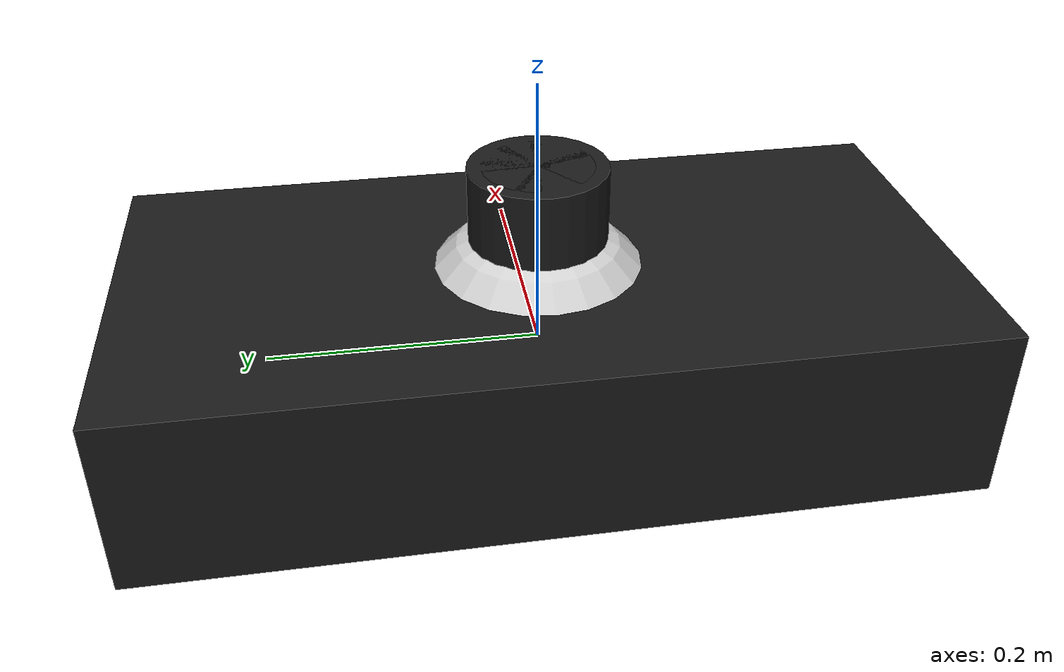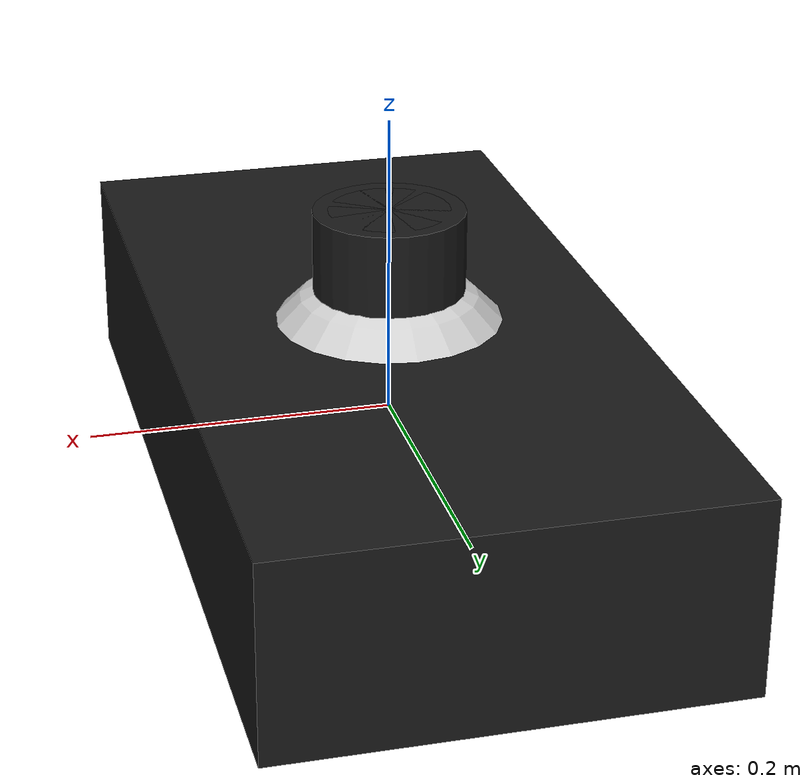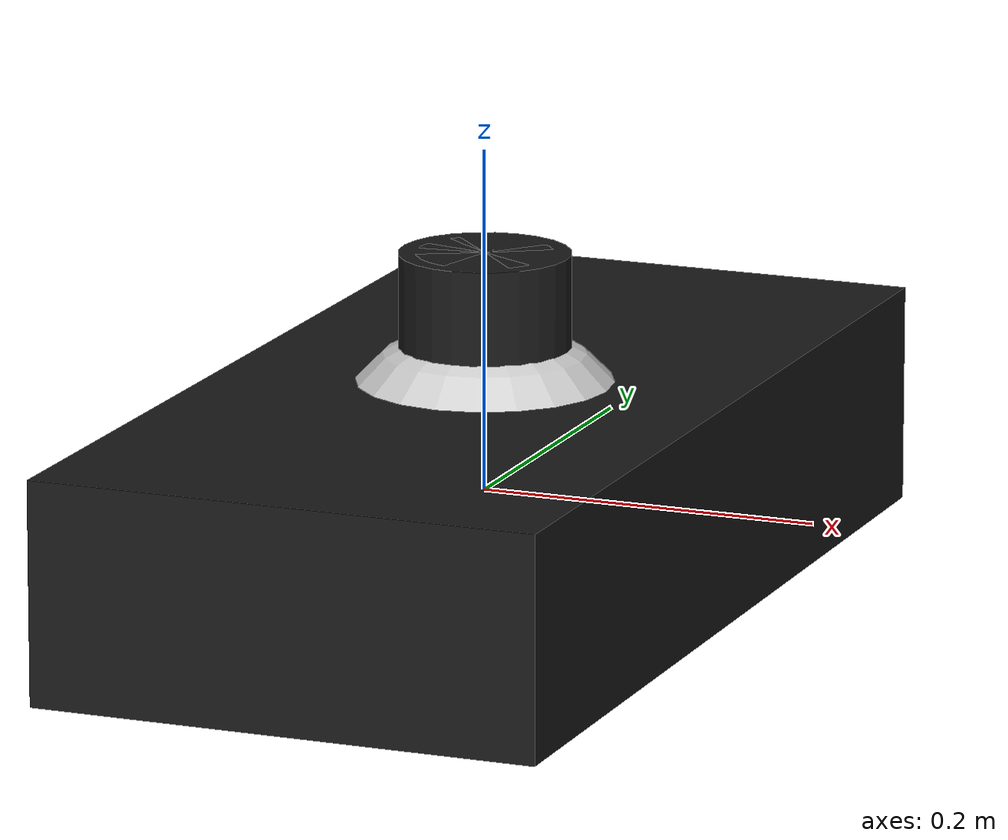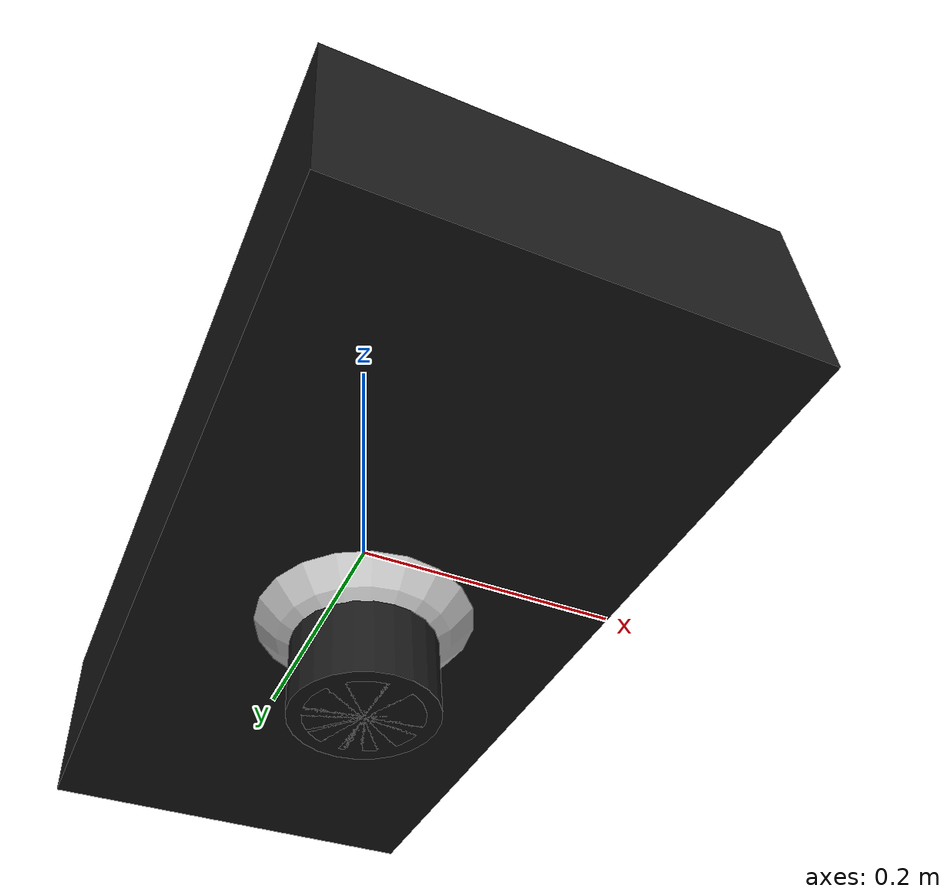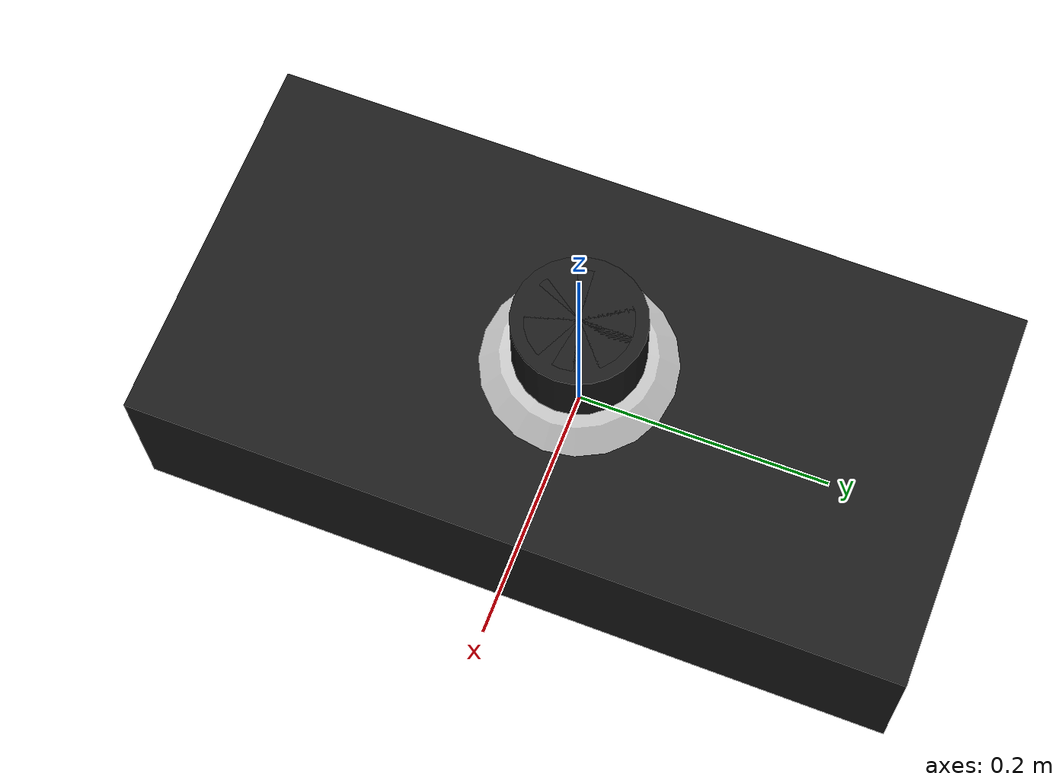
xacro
<?xml version="1.0"?>
<robot xmlns:sensor="http://playerstage.sourceforge.net/gazebo/xmlschema/#sensor"
	 xmlns:controller="http://playerstage.sourceforge.net/gazebo/xmlschema/#controller"
	 xmlns:interface="http://playerstage.sourceforge.net/gazebo/xmlschema/#interface"
   xmlns:xacro="http://ros.org/wiki/xacro"
	 name="human">

  <xacro:property name="M_PI" value="3.14159"/>
  <xacro:property name="ARM_MASS" value="1.0"/>

	<xacro:macro name="black">
		<material name="black">
			<color rgba="0.1 0.1 0.1 0.9"/>
		</material>
	</xacro:macro>

	<xacro:macro name="white">
		<material name="white">
			<color rgba="0.8 0.8 0.8 0.9"/>
		</material>
	</xacro:macro>

  <xacro:macro name="default_gazebo" params="name material">
 		<gazebo reference="${name}">
			<material>${material}</material>
			<selfCollide>false</selfCollide>
			<turnGravityOff>True</turnGravityOff>
		  <mu1 value="1.0" />
		  <mu2 value="1.0" />
		  <kp  value="1000000.0" />
		  <kd  value="1000.0" />
		</gazebo>
  </xacro:macro>

  <xacro:macro name="default_inertial" params="mass">
  	<inertial>
	  	<mass value="${mass}" />
		  <inertia ixx="0.001" ixy="0.0" ixz="0.0"
                   iyy="0.001" iyz="0.0"
                   izz="0.001" />
		</inertial>
  </xacro:macro>

	<xacro:macro name="shape_cylinder" params="name l r xyz rpy mass material *rviz_color">
		<link name="${name}">
			<visual>
				<origin xyz="${xyz}" rpy="${rpy}" />
				<geometry>
					<cylinder length="${l}" radius="${r}" />
				</geometry>
			  <xacro:insert_block name="rviz_color" />
      </visual>
      <collision>
				<origin xyz="${xyz}" rpy="${rpy}" />
				<geometry>
					<cylinder length="${l}" radius="${r}" />
				</geometry>
      </collision>
      <xacro:default_inertial mass="${mass}" />
    </link>
    <xacro:default_gazebo name="${name}" material="${material}" />
	</xacro:macro>

	<xacro:macro name="shape_sphere" params="name r xyz rpy mass material *rviz_color">
		<link name="${name}">
			<visual>
				<origin xyz="${xyz}" rpy="${rpy}" />
				<geometry>
					<sphere radius="${r}" />
				</geometry>
			  <xacro:insert_block name="rviz_color" />
      </visual>
      <collision>
				<origin xyz="${xyz}" rpy="${rpy}" />
				<geometry>
					<sphere radius="${r}" />
				</geometry>
      </collision>
      <xacro:default_inertial mass="${mass}" />
    </link>
    <xacro:default_gazebo name="${name}" material="${material}" />
	</xacro:macro>

	<xacro:macro name="shape_box" params="name lwh xyz rpy mass material *rviz_color">
		<link name="${name}">
			<visual>
				<origin xyz="${xyz}" rpy="${rpy}" />
				<geometry>
					<box size="${lwh}" />
				</geometry>
			  <xacro:insert_block name="rviz_color" />
      </visual>
      <collision>
				<origin xyz="${xyz}" rpy="${rpy}" />
					<geometry>
						<box size="${lwh}" />
					</geometry>
      </collision>
      <xacro:default_inertial mass="${mass}" />
    </link>
    <xacro:default_gazebo name="${name}" material="${material}" />
	</xacro:macro>

  <xacro:shape_box name="base_footprint" lwh="0 0 0" xyz="0 0 0" rpy="0 0 0" mass="0.001" material="Gazebo/FlatBlack">
    <xacro:black />
  </xacro:shape_box>

  <xacro:shape_box name="torso_1" lwh="0.30 0.60 0.13" xyz="0 0 0" rpy="0 0 0" mass="0.001" material="Gazebo/FlatBlack">
		<xacro:black />
  </xacro:shape_box>

  <xacro:shape_sphere name="head_1" r="0.10" xyz="0 0 0" rpy="0 0 0" mass="0.001" material="Gazebo/FlatWhite">
		<xacro:white />
	</xacro:shape_sphere>

  <xacro:shape_box name="hat_link" lwh="0.10 0.10 0.02" xyz="0 0 0" rpy="0 0 0" mass="10" material="Gazebo/FlatBlack">
    <xacro:black />
  </xacro:shape_box>

  <joint name="head_1_to_hat_link" type="floating">
    <parent link="head_1"/>
    <child link="hat_link"/>
    <origin xyz="0 0 0" rpy="0 0 0" />
  </joint>

  <xacro:shape_cylinder name="neck_1" l="0.28" r="0.05" xyz="0 0 0" rpy="${M_PI/2} 0 0" mass="0.001" material="Gazebo/FlatBlack">
		<xacro:black />
	</xacro:shape_cylinder>

  <xacro:shape_sphere name="left_shoulder_1" r="0.05" xyz="0 0 0" rpy="0 0 0" mass="0.001" material="Gazebo/FlatWhite">
		<xacro:white />
	</xacro:shape_sphere>

  <xacro:shape_sphere name="right_shoulder_1" r="0.05" xyz="0 0 0" rpy="0 0 0" mass="0.001" material="Gazebo/FlatWhite">
		<xacro:white />
	</xacro:shape_sphere>

  <xacro:shape_cylinder name="right_upper_arm" l="0.28" r="0.05" xyz="0 0 0" rpy="0 0 0" mass="0.001" material="Gazebo/FlatBlack">
		<xacro:black />
	</xacro:shape_cylinder>

  <xacro:shape_cylinder name="left_upper_arm" l="0.28" r="0.05" xyz="0 0 0" rpy="0 0 0" mass="0.001" material="Gazebo/FlatBlack">
		<xacro:black />
	</xacro:shape_cylinder>

  <xacro:shape_sphere name="left_elbow_1" r="0.04" xyz="0 0 0" rpy="0 0 0" mass="0.001" material="Gazebo/FlatWhite">
		<xacro:white />
	</xacro:shape_sphere>

  <xacro:shape_sphere name="right_elbow_1" r="0.04" xyz="0 0 0" rpy="0 0 0" mass="0.001" material="Gazebo/FlatWhite">
		<xacro:white />
	</xacro:shape_sphere>

  <xacro:shape_cylinder name="left_lower_arm" l="0.28" r="0.04" xyz="0 0 0" rpy="0 0 0" mass="${ARM_MASS}" material="Gazebo/FlatBlack">
		<xacro:black />
	</xacro:shape_cylinder>

  <xacro:shape_cylinder name="right_lower_arm" l="0.28" r="0.04" xyz="0 0 0" rpy="0 0 0" mass="${ARM_MASS}" material="Gazebo/FlatBlack">
		<xacro:black />
	</xacro:shape_cylinder>

  <xacro:shape_sphere name="left_hand_1" r="0.03" xyz="0 0 0" rpy="0 0 0" mass="${ARM_MASS}" material="Gazebo/FlatWhite">
		<xacro:white />
	</xacro:shape_sphere>

  <xacro:shape_sphere name="right_hand_1" r="0.03" xyz="0 0 0" rpy="0 0 0" mass="${ARM_MASS}" material="Gazebo/FlatWhite">
		<xacro:white />
	</xacro:shape_sphere>

	<!-- when "fixed" type joint is used, transformation isn't shown in gazebo, use continuous instead' -->
  <joint name="base_footprint_torso_1" type="floating">
    <parent link="base_footprint"/>
    <child link="torso_1"/>
    <origin xyz="0 0 0" rpy="0 0 0" />
  </joint>

  <joint name="torso_1_head_1" type="floating">
    <parent link="torso_1"/>
    <child link="head_1"/>
    <origin xyz="0 0 0" rpy="0 0 0" />
  </joint>

  <joint name="torso_1_neck_1" type="floating">
    <parent link="torso_1"/>
    <child link="neck_1"/>
    <origin xyz="0 0 0" rpy="0 0 0" />
  </joint>

  <joint name="torso_left_shoulder_1" type="floating">
    <parent link="torso_1"/>
    <child link="left_shoulder_1"/>
    <origin xyz="0 0 0" rpy="0 0 0" />
  </joint>

  <joint name="torso_right_shoulder_1" type="floating">
    <parent link="torso_1"/>
    <child link="right_shoulder_1"/>
    <origin xyz="0 0 0" rpy="0 0 0" />
  </joint>

  <joint name="right_shoulder_1_right_upper_arm" type="floating">
    <parent link="right_shoulder_1"/>
    <child link="right_upper_arm"/>
    <origin xyz="0 0 0" rpy="0 0 0" />
  </joint>

  <joint name="left_shoulder_1_left_upper_arm" type="floating">
    <parent link="left_shoulder_1"/>
    <child link="left_upper_arm"/>
    <origin xyz="0 0 0" rpy="0 0 0" />
  </joint>

  <joint name="right_upper_arm_right_elbow_1" type="floating">
    <parent link="right_upper_arm"/>
    <child link="right_elbow_1"/>
    <origin xyz="0 0 0" rpy="0 0 0" />
  </joint>

  <joint name="left_upper_arm_left_elbow_1" type="floating">
    <parent link="left_upper_arm"/>
    <child link="left_elbow_1"/>
    <origin xyz="0 0 0" rpy="0 0 0" />
  </joint>

  <joint name="right_elbow_1_right_lower_arm" type="floating">
    <parent link="right_elbow_1"/>
    <child link="right_lower_arm"/>
    <origin xyz="0 0 0" rpy="0 0 0" />
  </joint>

  <joint name="left_elbow_1_left_lower_arm" type="floating">
    <parent link="left_elbow_1"/>
    <child link="left_lower_arm"/>
    <origin xyz="0 0 0" rpy="0 0 0" />
  </joint>

  <joint name="right_elbow_1_right_hand_1" type="floating">
    <parent link="right_elbow_1"/>
    <child link="right_hand_1"/>
    <origin xyz="0 0 0" rpy="0 0 0" />
  </joint>

  <joint name="left_elbow_1_left_hand_1" type="floating">
    <parent link="left_elbow_1"/>
    <child link="left_hand_1"/>
    <origin xyz="0 0 0" rpy="0 0 0" />
  </joint>

</robot>
